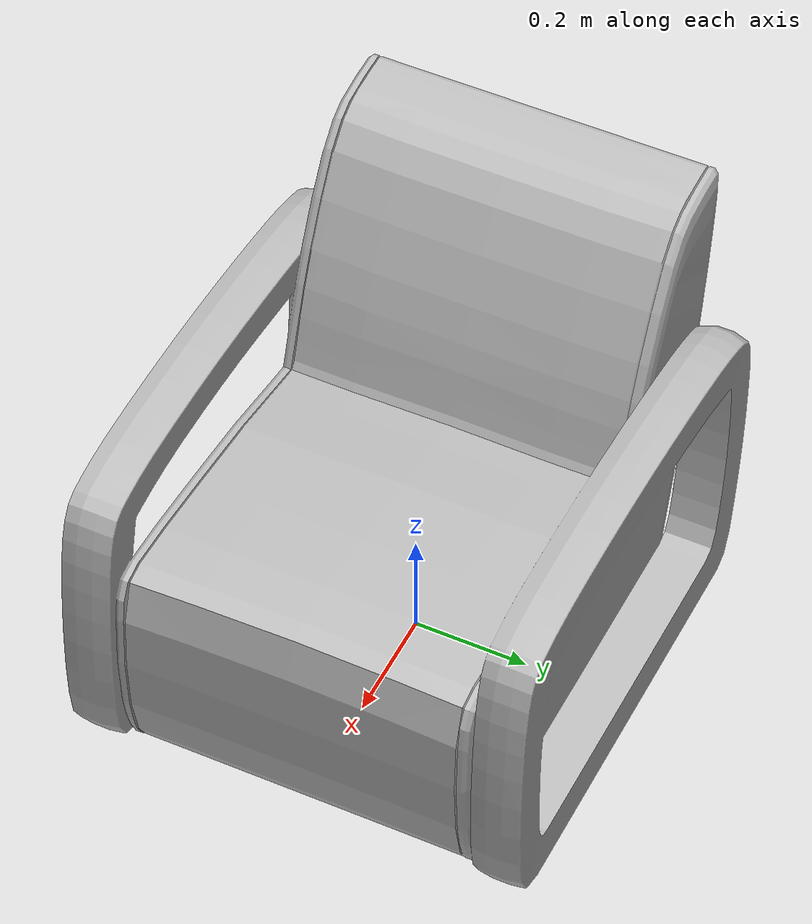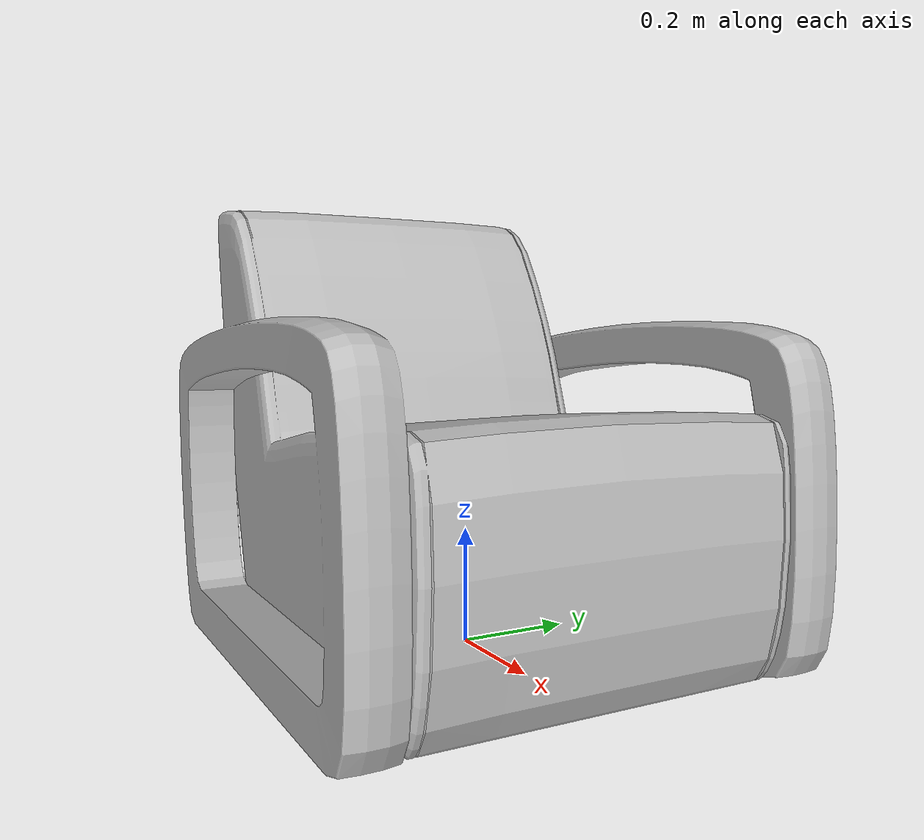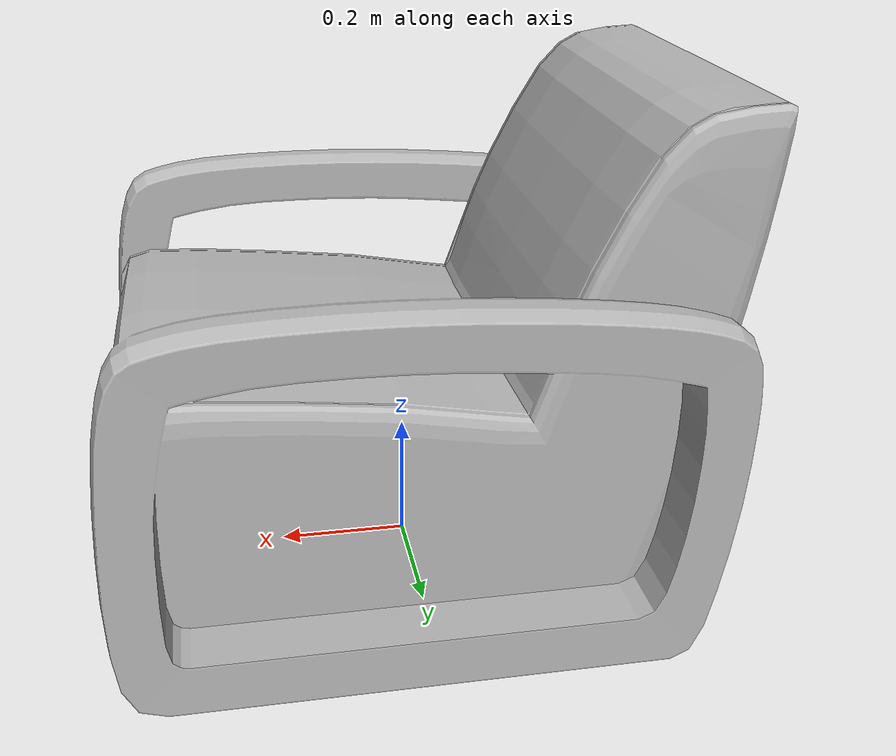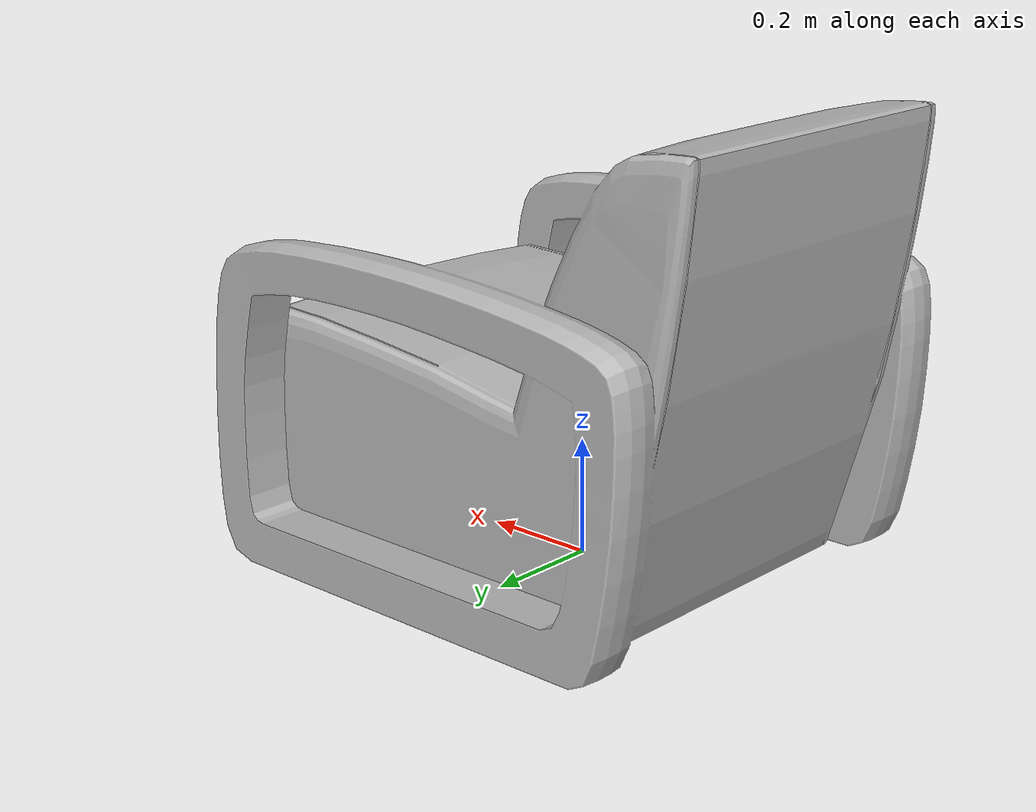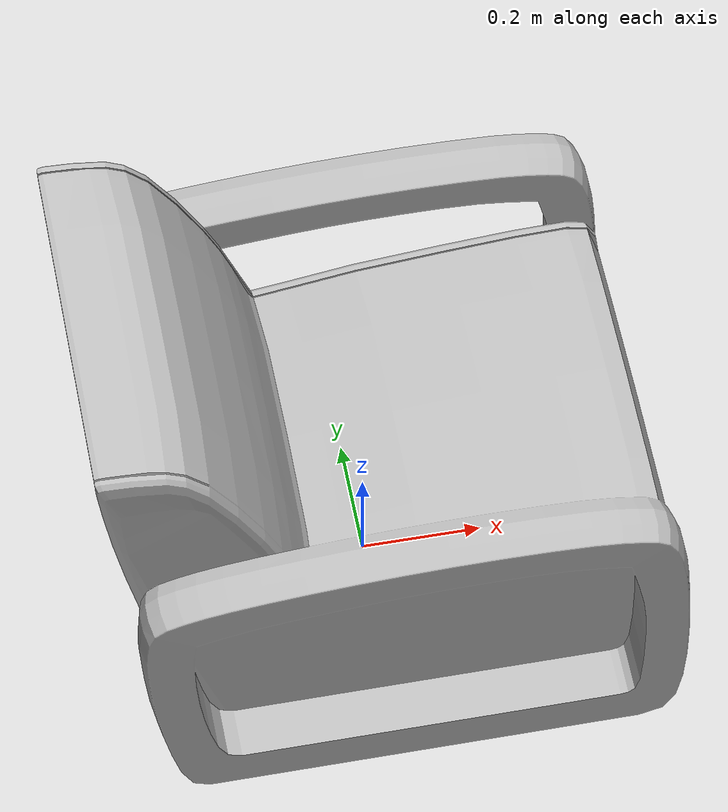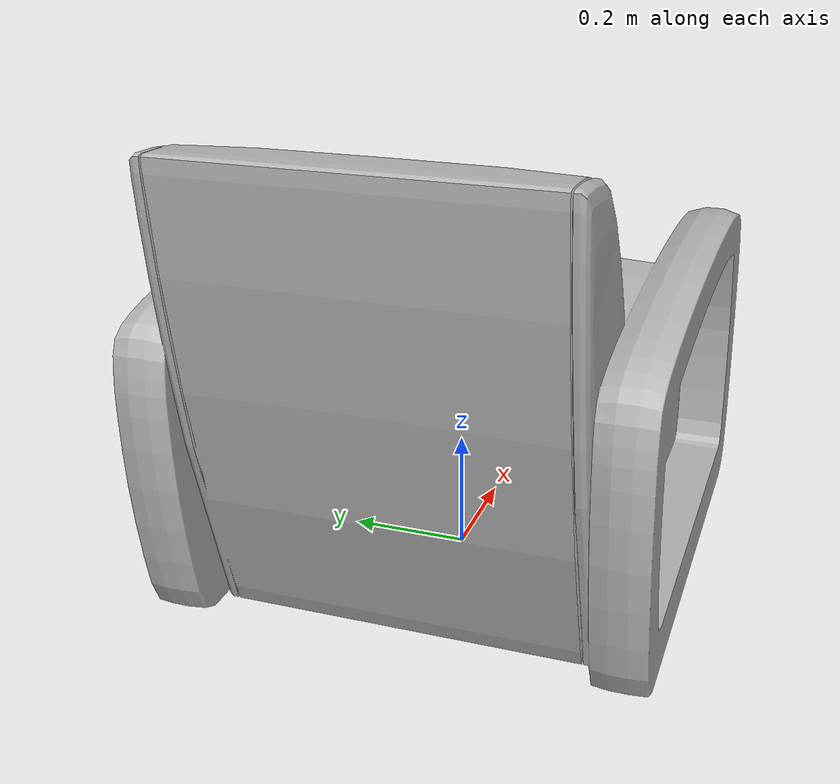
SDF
<?xml version='1.0'?>
<sdf version='1.4'>
  <model name='349'>
    <pose>0 0 0 0 0 0</pose>
    <static>true</static>
    <link name='link'>
      <collision name='collision'>
        <pose>0 0 0 0 0 0</pose>
        <geometry>
          <box>
            <size>0.921432 0.8 2</size>
          </box>
        </geometry>
      </collision>
      <visual name='visual'>
        <pose>0 0 0 0 0 0</pose>
        <geometry>
          <mesh><uri>model://349/349.dae</uri></mesh>
        </geometry>
      </visual>
    </link>
  </model>
</sdf>
